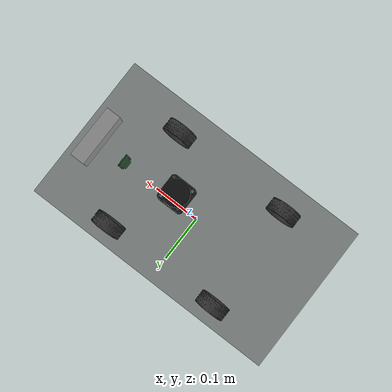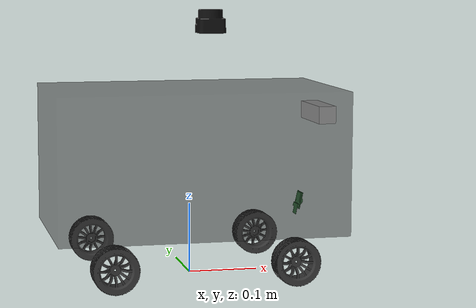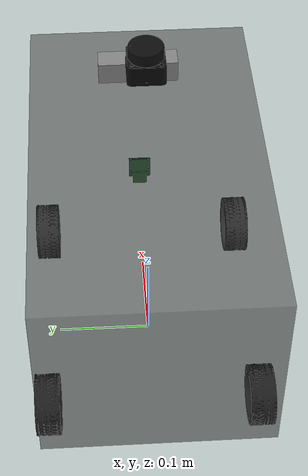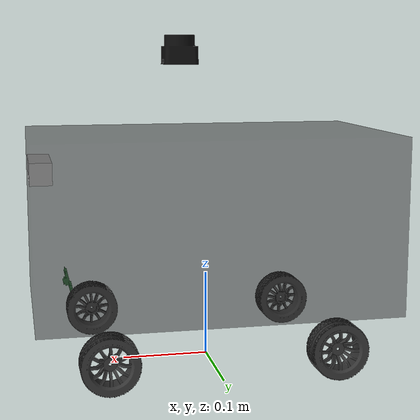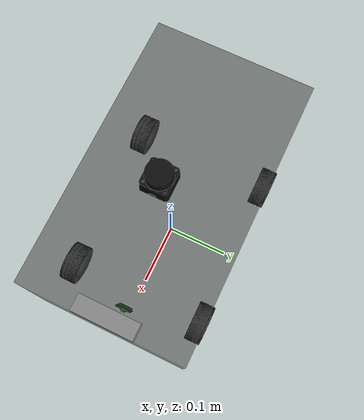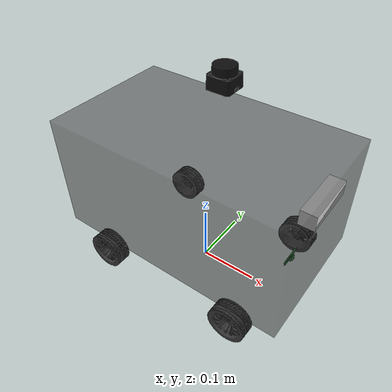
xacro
<?xml version="1.0"?>
<robot xmlns:xacro="http://www.ros.org/wiki/xacro" name="ubot">

    <xacro:property name="M_PI" value="3.1415926535897931" />

    <xacro:arg name="robot_name" default="ubot_robot"/>
    <xacro:arg name="prefix" default=""/>
    <xacro:arg name="use_gazebo" default="false"/>
    <!-- Simulated range sensor (ubot_description/config/sensor_profiles.yaml) and whether the
         benchmark noise pipeline (ubot_bench scan_model) replaces Gazebo's own noise. -->
    <xacro:arg name="sensor_profile" default="lidar_ms200"/>
    <xacro:arg name="bench" default="false"/>

    <xacro:include filename="$(find ubot_description)/urdf/body/ubot_base.urdf.xacro"/>
    <xacro:include filename="$(find ubot_description)/urdf/sensors/ubot_lidar.urdf.xacro"/>
    <!-- Ultrasonics are not part of the Inspection Robot 01 body; re-enable here and below if fitted. -->
    <xacro:include filename="$(find ubot_description)/urdf/sensors/ubot_camera.urdf.xacro"/>
    <xacro:include filename="$(find ubot_description)/urdf/sensors/ubot_rpi_camera.urdf.xacro"/>
    <xacro:include filename="$(find ubot_description)/urdf/sensors/ubot_imu.urdf.xacro"/>

    <xacro:include filename="$(find ubot_description)/urdf/body/ubot_wheel.urdf.xacro"/>
    <xacro:include filename="$(find ubot_description)/urdf/ros2_control/ubot_ros2_control.xacro"/>
    <xacro:include filename="$(find ubot_description)/urdf/gazebo/ubot_gazebo.urdf.xacro"/>

    <xacro:ubot_ros2_control prefix="$(arg prefix)" use_gazebo="$(arg use_gazebo)" />

    <xacro:if value="$(arg use_gazebo)">
        <xacro:ubot_gazebo prefix="$(arg prefix)" sensor_profile="$(arg sensor_profile)" bench="$(arg bench)"/>
    </xacro:if>

    <xacro:ubot_base
    prefix="$(arg prefix)" />

    <xacro:ubot_wheel
    prefix="$(arg prefix)" rear_mimic="${'$(arg use_gazebo)' != 'true'}" />

    <xacro:ubot_lidar
    prefix="$(arg prefix)" />

    <xacro:ubot_camera
    prefix="$(arg prefix)" />

    <xacro:ubot_rpi_camera
    prefix="$(arg prefix)" />

    <xacro:ubot_imu
    prefix="$(arg prefix)" />

</robot>

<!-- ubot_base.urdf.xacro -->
<robot xmlns:xacro="http://www.ros.org/wiki/xacro">
<xacro:property name="base_width" value="0.2371" />
<xacro:property name="base_length" value="0.41" />
<xacro:property name="base_height" value="0.2025" />
<xacro:property name="com_x" value="0.00489" />     <!--Center of Mass-->
<xacro:property name="com_y" value="-0.00007433" />
<xacro:property name="com_z" value="0.001" />
<xacro:property name="base_mass" value="3.0" />

<xacro:macro name="ubot_base" params="prefix">
    <link name="base_footprint"/>
    <link name="${prefix}base_link">
        <visual>
            <geometry>
                <box size="${base_length} ${base_width} ${base_height}"/>
            </geometry>
            <origin xyz="0 0 ${base_height/2}" rpy="0 0 0"/>
            <material name="dark_gray">
                <color rgba="0.2 0.2 0.2 0.5"/>
            </material>
        </visual>

        <collision>
            <geometry>
                <box size="${base_length} ${base_width} ${base_height}"/>
            </geometry>
            <origin xyz="0 0 ${base_height/2}" rpy="0 0 0"/>
        </collision>
        <inertial>
            <origin xyz="${com_x} ${com_y} ${com_z}" rpy="0 0 0"/>
            <mass value="${base_mass}"/>
            <inertia ixx="${(1/12) * base_mass * ((base_width * base_width) + (base_height * base_height))}"  ixy="0.0"  ixz="0.0"
                     iyy="${(1/12) * base_mass * ((base_length * base_length) + (base_height * base_height))}"  iyz="0.0"
                     izz="${(1/12) * base_mass * ((base_length * base_length) + (base_width * base_width))}"/>
        </inertial>
    </link>
    <gazebo reference="${prefix}base_link">
        <visual>
            <material>
                <ambient>0.5 0.5 0.5 0.5</ambient>
                <diffuse>0.5 0.5 0.5 0.5</diffuse>
                <specular>0.2 0.2 0.2 0.5</specular>
            </material>
        </visual>
    </gazebo>
    <joint name="${prefix}base_joint" type="fixed">
        <parent link="${prefix}base_footprint"/>
        <child link="${prefix}base_link"/>
        <origin xyz="0 0 ${wheel_radius - wheel_zoff}" rpy="0 0 0"/>
  </joint>
</xacro:macro>
</robot>

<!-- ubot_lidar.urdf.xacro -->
<robot xmlns:xacro="http://www.ros.org/wiki/xacro">
  <!-- LDROBOT LD06 on top of the mast. lidar_link is at the centre of the LD06 body. -->
  <xacro:property name="lidar_mass" value="0.042801" />
  <xacro:property name="lidar_radius" value="0.0193" />
  <xacro:property name="lidar_height" value="0.0333" />

  <xacro:property name="lidar_x" value="0.030584" />
  <xacro:property name="lidar_y" value="0.0" />
  <xacro:property name="lidar_z" value="0.296434" />

  <!-- LD06 centre in Fusion world coordinates (the mesh frame) -->
  <xacro:property name="lidar_mesh_x" value="0.192964" />

  <xacro:macro name="ubot_lidar" params="prefix">

    <link name="${prefix}lidar_link">
      <visual>
        <origin xyz="${-lidar_mesh_x} 0 ${-lidar_z}" rpy="0 0 0"/>
        <geometry>
          <mesh filename="file://$(find ubot_description)/meshes/inspection/ld06_lidar.stl" scale="0.001 0.001 0.001"/>
        </geometry>
        <material name="black">
          <color rgba="0.05 0.05 0.05 1"/>
        </material>
      </visual>

      <collision>
        <origin xyz="0 0 0" rpy="0 0 0"/>
        <geometry>
          <cylinder radius="${lidar_radius}" length="${lidar_height}"/>
        </geometry>
      </collision>

      <inertial>
        <origin xyz="-0.000095 0.000011 -0.001380" rpy="0 0 0"/>
        <mass value="${lidar_mass}"/>
        <inertia ixx="0.000008" ixy="0.0" ixz="0.0" iyy="0.000008" iyz="0.0" izz="0.000009"/>
      </inertial>
    </link>

    <joint name="${prefix}lidar_joint" type="fixed">
      <parent link="${prefix}base_link"/>
      <child link="${prefix}lidar_link"/>
      <origin xyz="${lidar_x} ${lidar_y} ${lidar_z}" rpy="0 0 0"/>
    </joint>
  </xacro:macro>
</robot>

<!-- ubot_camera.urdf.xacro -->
<robot xmlns:xacro="http://www.ros.org/wiki/xacro">

  <xacro:property name="M_PI" value="3.1415926535897931" />

  <!-- Camera Physical Properties -->
  <xacro:property name="camera_mass" value="0.10321" />
  <xacro:property name="camera_width" value="0.090" />  <!-- Typical depth camera length -->
  <xacro:property name="camera_length" value="0.025" />
  <xacro:property name="camera_height" value="0.025" />

  <!-- Center of Mass -->
  <xacro:property name="com_x" value="0.0" />
  <xacro:property name="com_y" value="0.0" />
  <xacro:property name="com_z" value="0.0" />

  <!-- Camera Mounting Position (relative to base_link) -->
  <xacro:property name="camera_x" value="${base_length/2}" />
  <xacro:property name="camera_y" value="0.0" />
  <xacro:property name="camera_z" value="0.162618" />

  <xacro:macro name="ubot_camera" params="prefix">

    <!--CAMERA_LINK (Main camera body)-->
    <link name="${prefix}camera_link">
      <visual>
        <geometry>
            <box size="${camera_length} ${camera_width} ${camera_height}"/>
        </geometry>
        <origin xyz="${-camera_length/2} 0 0" rpy="0 0 0"/>
        <material name="camera_white">
          <color rgba="0.9 0.9 0.9 1"/>
        </material>
      </visual>

      <collision>
        <geometry>
            <box size="${camera_length} ${camera_width} ${camera_height}"/>
        </geometry>
        <origin xyz="${-camera_length/2} 0 0" rpy="0 0 0"/>
      </collision>

      <inertial>
        <origin xyz="${com_x} ${com_y} ${com_z}" rpy="0 0 0"/>
        <mass value="${camera_mass}"/>
        <inertia ixx="${(1/12) * camera_mass * ((camera_width * camera_width) + (camera_height * camera_height))}"
                 ixy="0.0"  ixz="0.0"
                 iyy="${(1/12) * camera_mass * ((camera_length * camera_length) + (camera_height * camera_height))}"
                 iyz="0.0"
                 izz="${(1/12) * camera_mass * ((camera_length * camera_length) + (camera_width * camera_width))}"/>
      </inertial>
    </link>

    <joint name="${prefix}camera_joint" type="fixed">
      <parent link="${prefix}base_link"/>
      <child link="${prefix}camera_link"/>
      <origin xyz="${camera_x} ${camera_y} ${camera_z}" rpy="0 0 0"/>
    </joint>

    <!-- CAMERA_DEPTH_FRAME (Optical frame for depth)
         This follows ROS REP-103 conventions X is right, Y is down, Z is forward -->
    <link name="${prefix}camera_depth_frame"/>

    <joint name="${prefix}camera_depth_joint" type="fixed">
      <parent link="${prefix}camera_link"/>
      <child link="${prefix}camera_depth_frame"/>
      <!-- Rotate to optical frame X right, Y down, Z forward -->
      <origin xyz="0 0 0" rpy="0 0 0"/>
    </joint>

    <!-- CAMERA_RGB_FRAME (Optical frame for RGB) Typically aligned with depth frame-->
    <link name="${prefix}camera_rgb_frame"/>

    <joint name="${prefix}camera_rgb_joint" type="fixed">
      <parent link="${prefix}camera_link"/>
      <child link="${prefix}camera_rgb_frame"/>
      <!-- Same orientation as depth frame -->
      <origin xyz="0 0 0" rpy="${-pi/2} 0 ${-pi/2}"/>
    </joint>

    <!-- CAMERA_OPTICAL_FRAME (Alias for compatibility) -->
    <link name="${prefix}camera_optical_frame"/>

    <joint name="${prefix}camera_optical_joint" type="fixed">
      <parent link="${prefix}camera_depth_frame"/>
      <child link="${prefix}camera_optical_frame"/>
      <origin xyz="0 0 0" rpy="0 0 0"/>
    </joint>

  </xacro:macro>
</robot>

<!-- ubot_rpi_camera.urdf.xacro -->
<robot xmlns:xacro="http://www.ros.org/wiki/xacro">
  <!--
    Raspberry Pi Camera v1 in the lower front bumper.

    rpi_camera_link is at the centre of the camera board, X pointing out of the lens,
    tilted 12.54 deg downward as mounted in CAD.
  -->
  <xacro:property name="rpi_camera_mass" value="0.0017" />

  <xacro:property name="rpi_camera_x" value="0.163777" />
  <xacro:property name="rpi_camera_y" value="0.0" />
  <xacro:property name="rpi_camera_z" value="0.032609" />
  <xacro:property name="rpi_camera_pitch" value="0.2188" />   <!-- rad, positive = looking down -->

  <xacro:macro name="ubot_rpi_camera" params="prefix">

    <link name="${prefix}rpi_camera_link">
      <visual>
        <!-- inverse of the joint transform, so the world-frame mesh lands in place -->
        <origin xyz="-0.311305 0 -0.102620" rpy="0 ${-rpi_camera_pitch} 0"/>
        <geometry>
          <mesh filename="file://$(find ubot_description)/meshes/inspection/rpi_camera_v1.stl" scale="0.001 0.001 0.001"/>
        </geometry>
        <material name="pcb_green">
          <color rgba="0.1 0.4 0.15 1"/>
        </material>
      </visual>

      <inertial>
        <origin xyz="0 0 0" rpy="0 0 0"/>
        <mass value="${rpi_camera_mass}"/>
        <!-- 9 x 25 x 24 mm board + lens, box approximation -->
        <inertia ixx="0.000000093" ixy="0.0" ixz="0.0"
                 iyy="0.000000093" iyz="0.0"
                 izz="0.000000170"/>
      </inertial>
    </link>

    <joint name="${prefix}rpi_camera_joint" type="fixed">
      <parent link="${prefix}base_link"/>
      <child link="${prefix}rpi_camera_link"/>
      <origin xyz="${rpi_camera_x} ${rpi_camera_y} ${rpi_camera_z}" rpy="0 ${rpi_camera_pitch} 0"/>
    </joint>

    <!-- Optical frame (REP-103): X right, Y down, Z forward -->
    <link name="${prefix}rpi_camera_optical_frame"/>

    <joint name="${prefix}rpi_camera_optical_joint" type="fixed">
      <parent link="${prefix}rpi_camera_link"/>
      <child link="${prefix}rpi_camera_optical_frame"/>
      <origin xyz="0 0 0" rpy="${-pi/2} 0 ${-pi/2}"/>
    </joint>

  </xacro:macro>
</robot>

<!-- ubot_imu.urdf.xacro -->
<robot xmlns:xacro="http://www.ros.org/wiki/xacro">
  <xacro:property name="M_PI" value="3.1415926535897931" />
  <xacro:property name="imu_mass" value="0.050" />  <!-- 9-DOF IMU module with PCB ~50 g -->
  <xacro:property name="imu_length" value="0.0259" />
  <xacro:property name="imu_width" value="0.0155" />
  <xacro:property name="imu_height" value="0.015" />
  <xacro:property name="com_x" value="-0.000082" />     <!--Center of Mass-->
  <xacro:property name="com_y" value="-0.000041" />
  <xacro:property name="com_z" value="0.010541" />
  <xacro:property name="stand_height" value="${imu_height}" />

  <xacro:property name="imu_x" value="0.0" />
  <xacro:property name="imu_y" value="0.0" />
  <xacro:property name="imu_z" value="0.0" />

  <xacro:macro name="ubot_imu" params="prefix">

    <link name="${prefix}imu_link">
      <visual>
        <origin xyz="0 0 0" rpy="0 0 0"/>

        <geometry>
            <box size="${imu_length} ${imu_width} ${imu_height}"/>
        </geometry>

        <material name="black">
          <color rgba="0 0 0 0.5"/>
        </material>
      </visual>

      <inertial>
          <origin xyz="${com_x} ${com_y} ${com_z}" rpy="0 0 0"/>
          <mass value="${imu_mass}"/>
          <inertia ixx="${(1/12) * imu_mass * ((imu_width * imu_width) + (imu_height * imu_height))}"  ixy="0.0"  ixz="0.0"
                    iyy="${(1/12) * imu_mass * ((imu_length * imu_length) + (imu_height * imu_height))}"  iyz="0.0"
                    izz="${(1/12) * imu_mass * ((imu_length * imu_length) + (imu_width * imu_width))}"/>
      </inertial>
    </link>

    <joint name="${prefix}imu_joint" type="fixed">
      <parent link="${prefix}base_link"/>
      <child link="${prefix}imu_link"/>
      <origin xyz="${imu_x} ${imu_y} ${imu_z}" rpy="0 0 0"/>
    </joint>
  </xacro:macro>
</robot>

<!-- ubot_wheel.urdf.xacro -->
<robot xmlns:xacro="http://www.ros.org/wiki/xacro">

  <!-- Geometry from CAD (Inspection Robot 01). Joint origins sit exactly on each motor axle. -->
  <xacro:property name="wheel_radius" value="0.0325" />
  <xacro:property name="wheel_width" value="0.0264" />
  <xacro:property name="wheel_xoff" value="0.1275" />       <!-- half wheelbase (0.255 m axle to axle) -->
  <xacro:property name="wheel_yoff" value="0.1132" />       <!-- half track, wheel centre plane -->
  <xacro:property name="wheel_zoff" value="-0.033875" />    <!-- axle below base_link -->
  <xacro:property name="wheel_separation" value="${2*wheel_yoff}" />  <!-- geometric 0.2264 m -->

  <xacro:property name="wheel_mass" value="0.044215" />
  <xacro:property name="wheel_ixx" value="0.000018" />
  <xacro:property name="wheel_iyy" value="0.000032" />      <!-- about the axle -->
  <xacro:property name="wheel_izz" value="0.000018" />

  <!-- Wheel meshes are in Fusion world coordinates (mm): mesh_x/mesh_y is the wheel
       centre in that frame, so the visual origin is its negative. -->
  <xacro:macro name="ubot_single_wheel" params="prefix name x_sign y_sign mesh mesh_x mesh_y mimics:=''">
    <link name="${prefix}${name}_wheel_link">
      <visual>
        <origin xyz="${-mesh_x} ${-mesh_y} ${-wheel_zoff}" rpy="0 0 0"/>
        <geometry>
          <mesh filename="file://$(find ubot_description)/meshes/inspection/${mesh}.stl" scale="0.001 0.001 0.001"/>
        </geometry>
        <material name="dark_gray">
          <color rgba="0.2 0.2 0.2 1"/>
        </material>
      </visual>

      <collision>
        <origin xyz="0 0 0" rpy="${pi/2} 0 0"/>
        <geometry>
          <cylinder radius="${wheel_radius}" length="${wheel_width}"/>
        </geometry>
      </collision>

      <inertial>
        <origin xyz="0 0 0" rpy="0 0 0"/>
        <mass value="${wheel_mass}"/>
        <inertia ixx="${wheel_ixx}" ixy="0" ixz="0" iyy="${wheel_iyy}" iyz="0" izz="${wheel_izz}"/>
      </inertial>
    </link>

    <joint name="${prefix}${name}_wheel_joint" type="continuous">
      <axis xyz="0 1 0"/>
      <parent link="${prefix}base_link"/>
      <child link="${prefix}${name}_wheel_link"/>
      <origin xyz="${x_sign*wheel_xoff} ${y_sign*wheel_yoff} ${wheel_zoff}" rpy="0 0 0"/>
      <xacro:unless value="${mimics == ''}">
        <mimic joint="${prefix}${mimics}" multiplier="1.0" offset="0.0"/>
      </xacro:unless>
    </joint>
  </xacro:macro>

  <xacro:macro name="ubot_wheel" params="prefix rear_mimic:=true">
    <xacro:ubot_single_wheel prefix="${prefix}" name="front_left"  x_sign="1"  y_sign="1"  mesh="wheel_front_left"  mesh_x="0.28988" mesh_y="0.1132"/>
    <xacro:ubot_single_wheel prefix="${prefix}" name="front_right" x_sign="1"  y_sign="-1" mesh="wheel_front_right" mesh_x="0.28988" mesh_y="-0.1132"/>
    <xacro:ubot_single_wheel prefix="${prefix}" name="rear_left"   x_sign="-1" y_sign="1"  mesh="wheel_rear_left"   mesh_x="0.03488" mesh_y="0.1132"  mimics="${'front_left_wheel_joint' if rear_mimic else ''}"/>
    <xacro:ubot_single_wheel prefix="${prefix}" name="rear_right"  x_sign="-1" y_sign="-1" mesh="wheel_rear_right"  mesh_x="0.03488" mesh_y="-0.1132" mimics="${'front_right_wheel_joint' if rear_mimic else ''}"/>
  </xacro:macro>
</robot>
